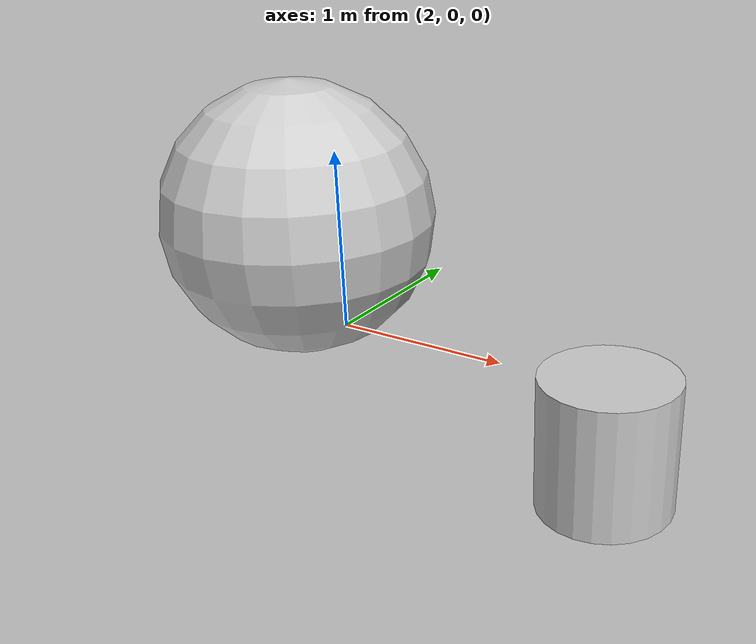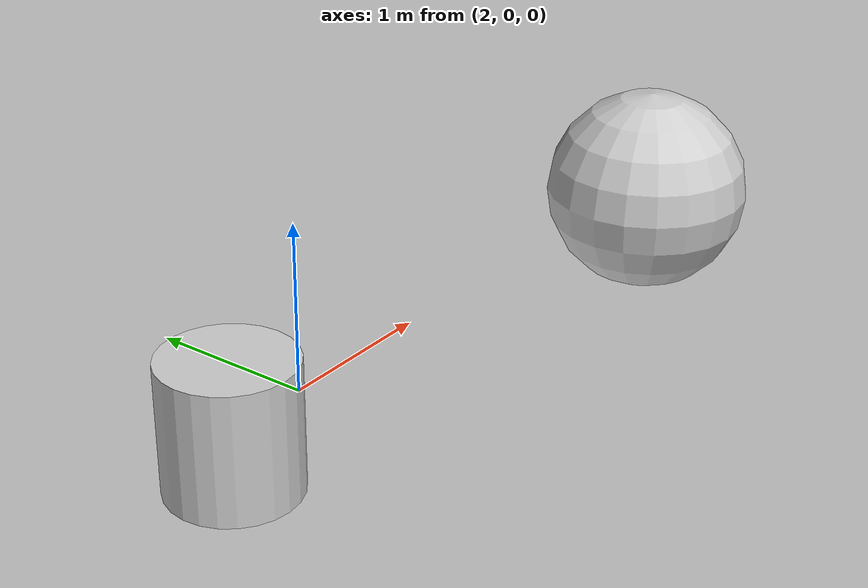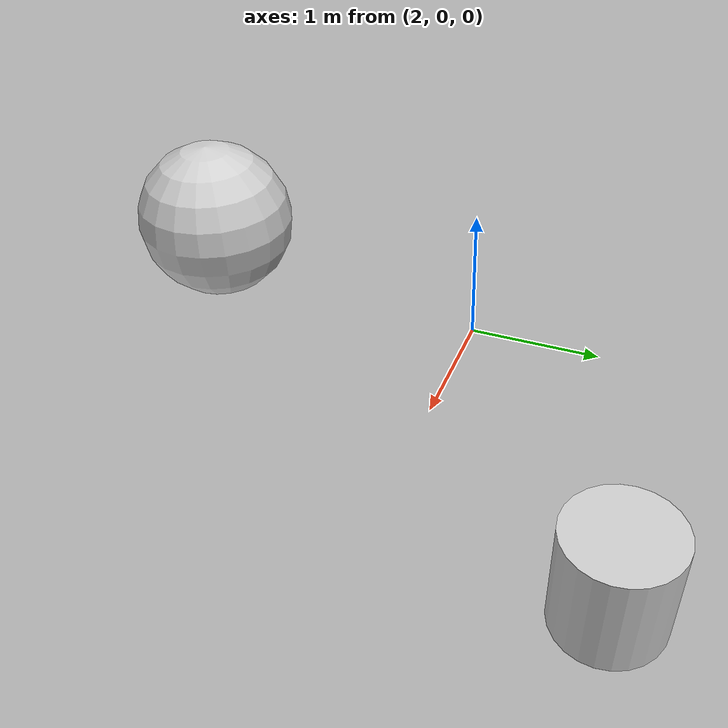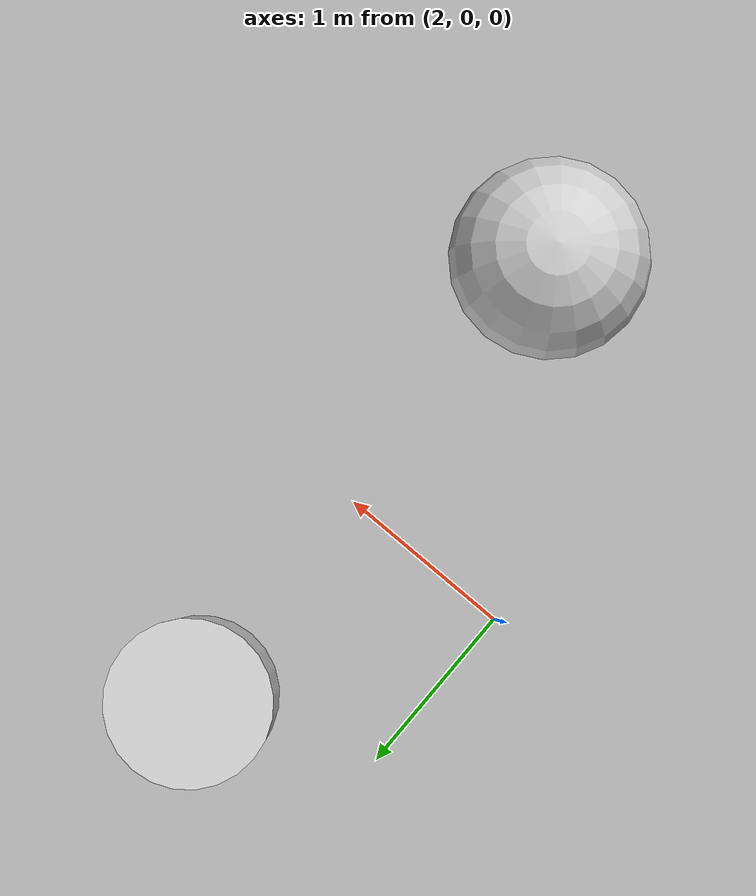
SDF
<sdf version="1.6">
 <world name="default">
  <gravity>0 0 0</gravity>
  <magnetic_field>6e-06 2.3e-05 -4.2e-05</magnetic_field>
  <atmosphere type="adiabatic"/>
  <physics name="default_physics" default="0" type="ode">
   <max_step_size>0.001</max_step_size>
   <real_time_update_rate>50</real_time_update_rate>
   <ode><solver><iters>200</iters></solver></ode>
  </physics>
  <scene><ambient>0.4 0.4 0.4 1</ambient><background>0.7 0.7 0.7 1</background><shadows>1</shadows></scene>
  <spherical_coordinates>
   <surface_model>EARTH_WGS84</surface_model>
   <latitude_deg>0</latitude_deg>
   <longitude_deg>0</longitude_deg>
   <elevation>0</elevation>
   <heading_deg>0</heading_deg>
  </spherical_coordinates>
  <model name="unit_cylinder">
   <pose>3.0 1.5 -1.25 0 0 0</pose>
   <link name="link">
    <inertial>
     <mass>1</mass>
     <inertia><ixx>0.145833</ixx><ixy>0</ixy><ixz>0</ixz><iyy>0.145833</iyy><iyz>0</iyz><izz>0.125</izz></inertia>
    </inertial>
    <collision name="collision">
     <geometry><cylinder><radius>0.5</radius><length>1</length></cylinder></geometry>
    </collision>
    <visual name="visual">
     <geometry><cylinder><radius>0.5</radius><length>1</length></cylinder></geometry>
     <material>
      <script><name>Gazebo/LightGrey</name><uri>file://media/materials/scripts/gazebo.material</uri></script>
     </material>
    </visual>
   </link>
  </model>
  <model name="unit_sphere">
   <pose>3.0 -1.5 1.25 0 0 0</pose>
   <link name="link">
    <inertial>
     <mass>1</mass>
     <inertia><ixx>0.1</ixx><ixy>0</ixy><ixz>0</ixz><iyy>0.1</iyy><iyz>0</iyz><izz>0.1</izz></inertia>
    </inertial>
    <collision name="collision"><geometry><sphere><radius>0.5</radius></sphere></geometry></collision>
    <visual name="visual">
     <geometry><sphere><radius>0.5</radius></sphere></geometry>
     <material>
      <script><name>Gazebo/LightGrey</name><uri>file://media/materials/scripts/gazebo.material</uri></script>
     </material>
    </visual>
   </link>
  </model>
 </world>
</sdf>
